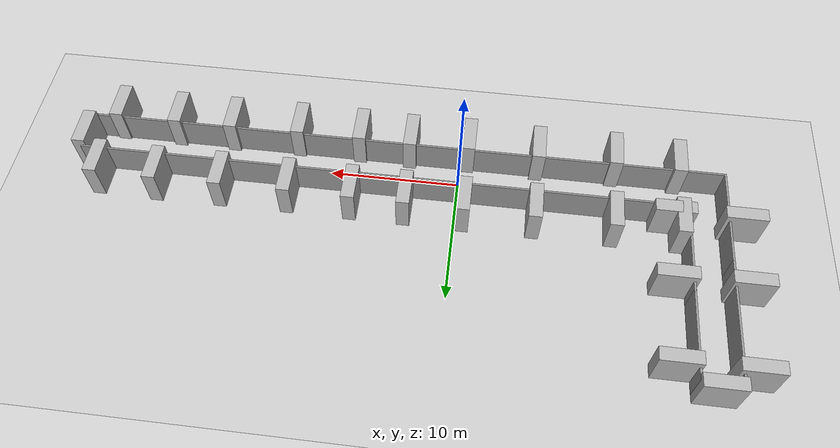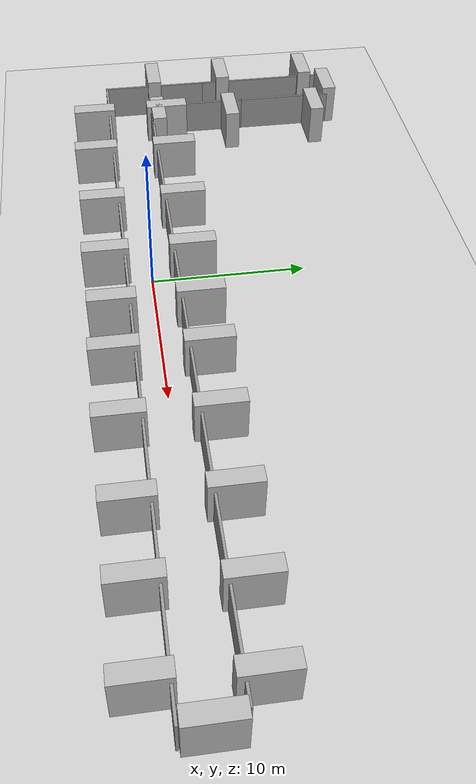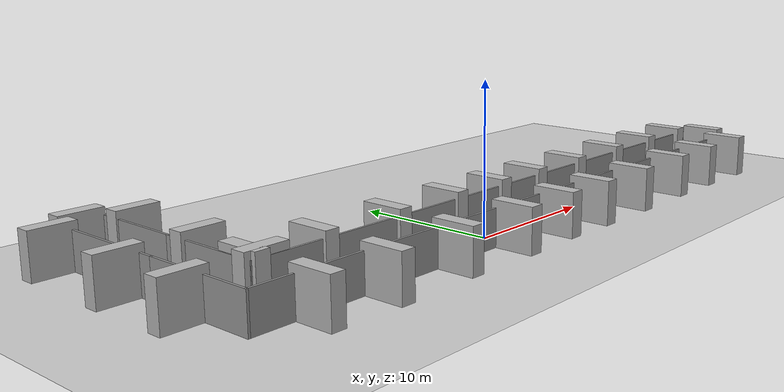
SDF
<sdf version="1.7">
 <world name="default">
  <light name="sun" type="directional">
   <pose>0 0 10 0 -0 0</pose>
   <diffuse>0.8 0.8 0.8 1</diffuse>
   <specular>0.2 0.2 0.2 1</specular>
   <attenuation>
    <range>1000</range>
    <constant>0.9</constant>
    <linear>0.01</linear>
    <quadratic>0.001</quadratic>
   </attenuation>
   <direction>-0.5 0.1 -0.9</direction>
   <spot><inner_angle>0</inner_angle><outer_angle>0</outer_angle><falloff>0</falloff></spot>
  </light>
  <model name="ground_plane">
   <static>1</static>
   <link name="link">
    <collision name="collision">
     <geometry><plane><normal>0 0 1</normal><size>100 100</size></plane></geometry>
     <surface>
      <contact><collide_bitmask>65535</collide_bitmask></contact>
      <friction><ode><mu>100</mu><mu2>50</mu2></ode></friction>
     </surface>
    </collision>
    <visual name="visual">
     <cast_shadows>0</cast_shadows>
     <geometry><plane><normal>0 0 1</normal><size>100 100</size></plane></geometry>
     <material>
      <script><uri>file://media/materials/scripts/gazebo.material</uri><name>Gazebo/Grey</name></script>
     </material>
    </visual>
   </link>
  </model>
  <gravity>0 0 -9.8</gravity>
  <magnetic_field>6e-06 2.3e-05 -4.2e-05</magnetic_field>
  <atmosphere type="adiabatic"/>
  <physics type="ode">
   <max_step_size>0.001</max_step_size>
   <real_time_factor>1</real_time_factor>
   <real_time_update_rate>1000</real_time_update_rate>
  </physics>
  <scene><ambient>0.4 0.4 0.4 1</ambient><background>0.7 0.7 0.7 1</background><shadows>1</shadows></scene>
  <audio><device>default</device></audio>
  <spherical_coordinates>
   <surface_model>EARTH_WGS84</surface_model>
   <latitude_deg>0</latitude_deg>
   <longitude_deg>0</longitude_deg>
   <elevation>0</elevation>
   <heading_deg>0</heading_deg>
  </spherical_coordinates>
  <model name="world2">
   <pose>4.7262 6.81622 0 0 -0 0</pose>
   <link name="Wall_12">
    <collision name="Wall_12_Collision">
     <geometry><box><size>7.75 0.15 2.5</size></box></geometry>
     <pose>0 0 1.25 0 -0 0</pose>
    </collision>
    <visual name="Wall_12_Visual">
     <pose>0 0 1.25 0 -0 0</pose>
     <geometry><box><size>7.75 0.15 2.5</size></box></geometry>
     <material>
      <script><uri>file://media/materials/scripts/gazebo.material</uri><name>Gazebo/Grey</name></script>
      <ambient>1 1 1 1</ambient>
     </material>
     <meta><layer>0</layer></meta>
    </visual>
    <pose>-24.6986 -4.675 0 0 -0 1.5708</pose>
   </link>
   <link name="Wall_14">
    <collision name="Wall_14_Collision">
     <geometry><box><size>11.25 0.15 2.5</size></box></geometry>
     <pose>0 0 1.25 0 -0 0</pose>
    </collision>
    <visual name="Wall_14_Visual">
     <pose>0 0 1.25 0 -0 0</pose>
     <geometry><box><size>11.25 0.15 2.5</size></box></geometry>
     <material>
      <script><uri>file://media/materials/scripts/gazebo.material</uri><name>Gazebo/Grey</name></script>
      <ambient>1 1 1 1</ambient>
     </material>
     <meta><layer>0</layer></meta>
    </visual>
    <pose>-16.3037 -5.29947 0 0 -0 3.14159</pose>
   </link>
   <link name="Wall_16">
    <collision name="Wall_16_Collision">
     <geometry><box><size>7.25 0.15 2.5</size></box></geometry>
     <pose>0 0 1.25 0 -0 0</pose>
    </collision>
    <visual name="Wall_16_Visual">
     <pose>0 0 1.25 0 -0 0</pose>
     <geometry><box><size>7.25 0.15 2.5</size></box></geometry>
     <material>
      <script><uri>file://media/materials/scripts/gazebo.material</uri><name>Gazebo/Grey</name></script>
      <ambient>1 1 1 1</ambient>
     </material>
     <meta><layer>0</layer></meta>
    </visual>
    <pose>-21.8537 -1.74947 0 0 -0 1.5708</pose>
   </link>
   <link name="Wall_18">
    <collision name="Wall_18_Collision">
     <geometry><box><size>9.5 0.15 2.5</size></box></geometry>
     <pose>0 0 1.25 0 -0 0</pose>
    </collision>
    <visual name="Wall_18_Visual">
     <pose>0 0 1.25 0 -0 0</pose>
     <geometry><box><size>9.5 0.15 2.5</size></box></geometry>
     <material>
      <script><uri>file://media/materials/scripts/gazebo.material</uri><name>Gazebo/Grey</name></script>
      <ambient>1 1 1 1</ambient>
     </material>
     <meta><layer>0</layer></meta>
    </visual>
    <pose>-24.6986 3.8 0 0 -0 1.5708</pose>
   </link>
   <link name="Wall_20">
    <collision name="Wall_20_Collision">
     <geometry><box><size>6.75 0.15 2.5</size></box></geometry>
     <pose>0 0 1.25 0 -0 0</pose>
    </collision>
    <visual name="Wall_20_Visual">
     <pose>0 0 1.25 0 -0 0</pose>
     <geometry><box><size>6.75 0.15 2.5</size></box></geometry>
     <material>
      <script><uri>file://media/materials/scripts/gazebo.material</uri><name>Gazebo/Grey</name></script>
      <ambient>1 1 1 1</ambient>
     </material>
     <meta><layer>0</layer></meta>
    </visual>
    <pose>-21.8537 5.10053 0 0 -0 1.5708</pose>
   </link>
   <link name="Wall_24">
    <collision name="Wall_24_Collision">
     <geometry><box><size>35.5 0.15 2.5</size></box></geometry>
     <pose>0 0 1.25 0 -0 0</pose>
    </collision>
    <visual name="Wall_24_Visual">
     <pose>0 0 1.25 0 -0 0</pose>
     <geometry><box><size>35.5 0.15 2.5</size></box></geometry>
     <material>
      <script><uri>file://media/materials/scripts/gazebo.material</uri><name>Gazebo/Grey</name></script>
      <ambient>1 1 1 1</ambient>
     </material>
     <meta><layer>0</layer></meta>
    </visual>
    <pose>7.02355 -8.475 0 0 -0 0</pose>
   </link>
   <link name="Wall_27">
    <collision name="Wall_27_Collision">
     <geometry><box><size>35.25 0.15 2.5</size></box></geometry>
     <pose>0 0 1.25 0 -0 0</pose>
    </collision>
    <visual name="Wall_27_Visual">
     <pose>0 0 1.25 0 -0 0</pose>
     <geometry><box><size>35.25 0.15 2.5</size></box></geometry>
     <material>
      <script><uri>file://media/materials/scripts/gazebo.material</uri><name>Gazebo/Grey</name></script>
      <ambient>1 1 1 1</ambient>
     </material>
     <meta><layer>0</layer></meta>
    </visual>
    <pose>6.79625 -5.29947 0 0 -0 0</pose>
   </link>
   <link name="Wall_9">
    <collision name="Wall_9_Collision">
     <geometry><box><size>14.1971 0.15 2.5</size></box></geometry>
     <pose>0 0 1.25 0 -0 0</pose>
    </collision>
    <visual name="Wall_9_Visual">
     <pose>0 0 1.25 0 -0 0</pose>
     <geometry><box><size>14.1971 0.15 2.5</size></box></geometry>
     <material>
      <script><uri>file://media/materials/scripts/gazebo.material</uri><name>Gazebo/Grey</name></script>
      <ambient>1 1 1 1</ambient>
     </material>
     <meta><layer>0</layer></meta>
    </visual>
    <pose>-17.675 -8.475 0 0 -0 3.14159</pose>
   </link>
   <static>1</static>
  </model>
  <model name="brick_box_3x1x3">
   <static>1</static>
   <link name="chassis">
    <pose>0 0 1.5 0 -0 0</pose>
    <collision name="collision"><geometry><box><size>3 1 3</size></box></geometry></collision>
    <visual name="visual">
     <geometry><mesh><uri>model://brick_box_3x1x3/meshes/simple_box.dae</uri><scale>3 1 3</scale></mesh></geometry>
     <material>
      <script>
       <uri>model://brick_box_3x1x3/materials/scripts</uri>
       <uri>model://brick_box_3x1x3/materials/textures</uri>
       <name>BrickBox/Diffuse</name>
      </script>
     </material>
    </visual>
   </link>
   <pose>-16.0533 2.00438 0 0 -0 0</pose>
  </model>
  <model name="brick_box_3x1x3_clone">
   <static>1</static>
   <link name="chassis">
    <pose>0 0 1.5 0 -0 0</pose>
    <collision name="collision"><geometry><box><size>3 1 3</size></box></geometry></collision>
    <visual name="visual">
     <geometry><mesh><uri>model://brick_box_3x1x3/meshes/simple_box.dae</uri><scale>3 1 3</scale></mesh></geometry>
     <material>
      <script>
       <uri>model://brick_box_3x1x3/materials/scripts</uri>
       <uri>model://brick_box_3x1x3/materials/textures</uri>
       <name>BrickBox/Diffuse</name>
      </script>
     </material>
    </visual>
   </link>
   <pose>-21.1247 2.05732 0 0 -0 0</pose>
  </model>
  <model name="brick_box_3x1x3_clone_0">
   <static>1</static>
   <link name="chassis">
    <pose>0 0 1.5 0 -0 0</pose>
    <collision name="collision"><geometry><box><size>3 1 3</size></box></geometry></collision>
    <visual name="visual">
     <geometry><mesh><uri>model://brick_box_3x1x3/meshes/simple_box.dae</uri><scale>3 1 3</scale></mesh></geometry>
     <material>
      <script>
       <uri>model://brick_box_3x1x3/materials/scripts</uri>
       <uri>model://brick_box_3x1x3/materials/textures</uri>
       <name>BrickBox/Diffuse</name>
      </script>
     </material>
    </visual>
   </link>
   <pose>-15.9462 7.47213 0 0 -0 0</pose>
  </model>
  <model name="brick_box_3x1x3_clone_1">
   <static>1</static>
   <link name="chassis">
    <pose>0 0 1.5 0 -0 0</pose>
    <collision name="collision"><geometry><box><size>3 1 3</size></box></geometry></collision>
    <visual name="visual">
     <geometry><mesh><uri>model://brick_box_3x1x3/meshes/simple_box.dae</uri><scale>3 1 3</scale></mesh></geometry>
     <material>
      <script>
       <uri>model://brick_box_3x1x3/materials/scripts</uri>
       <uri>model://brick_box_3x1x3/materials/textures</uri>
       <name>BrickBox/Diffuse</name>
      </script>
     </material>
    </visual>
   </link>
   <pose>-21.2009 7.4413 0 0 -0 0</pose>
  </model>
  <model name="brick_box_3x1x3_clone_2">
   <static>1</static>
   <link name="chassis">
    <pose>0 0 1.5 0 -0 0</pose>
    <collision name="collision"><geometry><box><size>3 1 3</size></box></geometry></collision>
    <visual name="visual">
     <geometry><mesh><uri>model://brick_box_3x1x3/meshes/simple_box.dae</uri><scale>3 1 3</scale></mesh></geometry>
     <material>
      <script>
       <uri>model://brick_box_3x1x3/materials/scripts</uri>
       <uri>model://brick_box_3x1x3/materials/textures</uri>
       <name>BrickBox/Diffuse</name>
      </script>
     </material>
    </visual>
   </link>
   <pose>-15.8198 13.9062 0 0 -0 0</pose>
  </model>
  <model name="brick_box_3x1x3_clone_3">
   <static>1</static>
   <link name="chassis">
    <pose>0 0 1.5 0 -0 0</pose>
    <collision name="collision"><geometry><box><size>3 1 3</size></box></geometry></collision>
    <visual name="visual">
     <geometry><mesh><uri>model://brick_box_3x1x3/meshes/simple_box.dae</uri><scale>3 1 3</scale></mesh></geometry>
     <material>
      <script>
       <uri>model://brick_box_3x1x3/materials/scripts</uri>
       <uri>model://brick_box_3x1x3/materials/textures</uri>
       <name>BrickBox/Diffuse</name>
      </script>
     </material>
    </visual>
   </link>
   <pose>-21.1444 13.9923 0 0 -0 0</pose>
  </model>
  <model name="brick_box_3x1x3_clone_4">
   <static>1</static>
   <link name="chassis">
    <pose>0 0 1.5 0 -0 0</pose>
    <collision name="collision"><geometry><box><size>3 1 3</size></box></geometry></collision>
    <visual name="visual">
     <geometry><mesh><uri>model://brick_box_3x1x3/meshes/simple_box.dae</uri><scale>3 1 3</scale></mesh></geometry>
     <material>
      <script>
       <uri>model://brick_box_3x1x3/materials/scripts</uri>
       <uri>model://brick_box_3x1x3/materials/textures</uri>
       <name>BrickBox/Diffuse</name>
      </script>
     </material>
    </visual>
   </link>
   <pose>-11.7529 2.71518 0 0 -0 1.5708</pose>
  </model>
  <model name="brick_box_3x1x3_clone_4_clone">
   <static>1</static>
   <link name="chassis">
    <pose>0 0 1.5 0 -0 0</pose>
    <collision name="collision"><geometry><box><size>3 1 3</size></box></geometry></collision>
    <visual name="visual">
     <geometry><mesh><uri>model://brick_box_3x1x3/meshes/simple_box.dae</uri><scale>3 1 3</scale></mesh></geometry>
     <material>
      <script>
       <uri>model://brick_box_3x1x3/materials/scripts</uri>
       <uri>model://brick_box_3x1x3/materials/textures</uri>
       <name>BrickBox/Diffuse</name>
      </script>
     </material>
    </visual>
   </link>
   <pose>-16.6245 2.66905 0 0 -0 1.5708</pose>
  </model>
  <model name="brick_box_3x1x3_clone_4_clone_0">
   <static>1</static>
   <link name="chassis">
    <pose>0 0 1.5 0 -0 0</pose>
    <collision name="collision"><geometry><box><size>3 1 3</size></box></geometry></collision>
    <visual name="visual">
     <geometry><mesh><uri>model://brick_box_3x1x3/meshes/simple_box.dae</uri><scale>3 1 3</scale></mesh></geometry>
     <material>
      <script>
       <uri>model://brick_box_3x1x3/materials/scripts</uri>
       <uri>model://brick_box_3x1x3/materials/textures</uri>
       <name>BrickBox/Diffuse</name>
      </script>
     </material>
    </visual>
   </link>
   <pose>-16.5797 -2.76767 0 0 -0 1.5708</pose>
  </model>
  <model name="brick_box_3x1x3_clone_4_clone_1">
   <static>1</static>
   <link name="chassis">
    <pose>0 0 1.5 0 -0 0</pose>
    <collision name="collision"><geometry><box><size>3 1 3</size></box></geometry></collision>
    <visual name="visual">
     <geometry><mesh><uri>model://brick_box_3x1x3/meshes/simple_box.dae</uri><scale>3 1 3</scale></mesh></geometry>
     <material>
      <script>
       <uri>model://brick_box_3x1x3/materials/scripts</uri>
       <uri>model://brick_box_3x1x3/materials/textures</uri>
       <name>BrickBox/Diffuse</name>
      </script>
     </material>
    </visual>
   </link>
   <pose>-11.7866 -2.89096 0 0 -0 1.5708</pose>
  </model>
  <model name="brick_box_3x1x3_clone_4_clone_2">
   <static>1</static>
   <link name="chassis">
    <pose>0 0 1.5 0 -0 0</pose>
    <collision name="collision"><geometry><box><size>3 1 3</size></box></geometry></collision>
    <visual name="visual">
     <geometry><mesh><uri>model://brick_box_3x1x3/meshes/simple_box.dae</uri><scale>3 1 3</scale></mesh></geometry>
     <material>
      <script>
       <uri>model://brick_box_3x1x3/materials/scripts</uri>
       <uri>model://brick_box_3x1x3/materials/textures</uri>
       <name>BrickBox/Diffuse</name>
      </script>
     </material>
    </visual>
   </link>
   <pose>-5.8984 2.68785 0 0 -0 1.5708</pose>
  </model>
  <model name="brick_box_3x1x3_clone_4_clone_3">
   <static>1</static>
   <link name="chassis">
    <pose>0 0 1.5 0 -0 0</pose>
    <collision name="collision"><geometry><box><size>3 1 3</size></box></geometry></collision>
    <visual name="visual">
     <geometry><mesh><uri>model://brick_box_3x1x3/meshes/simple_box.dae</uri><scale>3 1 3</scale></mesh></geometry>
     <material>
      <script>
       <uri>model://brick_box_3x1x3/materials/scripts</uri>
       <uri>model://brick_box_3x1x3/materials/textures</uri>
       <name>BrickBox/Diffuse</name>
      </script>
     </material>
    </visual>
   </link>
   <pose>-5.9325 -2.7777 0 0 -0 1.5708</pose>
  </model>
  <model name="brick_box_3x1x3_clone_4_clone_4">
   <static>1</static>
   <link name="chassis">
    <pose>0 0 1.5 0 -0 0</pose>
    <collision name="collision"><geometry><box><size>3 1 3</size></box></geometry></collision>
    <visual name="visual">
     <geometry><mesh><uri>model://brick_box_3x1x3/meshes/simple_box.dae</uri><scale>3 1 3</scale></mesh></geometry>
     <material>
      <script>
       <uri>model://brick_box_3x1x3/materials/scripts</uri>
       <uri>model://brick_box_3x1x3/materials/textures</uri>
       <name>BrickBox/Diffuse</name>
      </script>
     </material>
    </visual>
   </link>
   <pose>-0.607345 2.71275 0 0 -0 1.5708</pose>
  </model>
  <model name="brick_box_3x1x3_clone_4_clone_5">
   <static>1</static>
   <link name="chassis">
    <pose>0 0 1.5 0 -0 0</pose>
    <collision name="collision"><geometry><box><size>3 1 3</size></box></geometry></collision>
    <visual name="visual">
     <geometry><mesh><uri>model://brick_box_3x1x3/meshes/simple_box.dae</uri><scale>3 1 3</scale></mesh></geometry>
     <material>
      <script>
       <uri>model://brick_box_3x1x3/materials/scripts</uri>
       <uri>model://brick_box_3x1x3/materials/textures</uri>
       <name>BrickBox/Diffuse</name>
      </script>
     </material>
    </visual>
   </link>
   <pose>-0.559161 -2.89095 0 0 -0 1.5708</pose>
  </model>
  <model name="brick_box_3x1x3_clone_4_clone_6">
   <static>1</static>
   <link name="chassis">
    <pose>0 0 1.5 0 -0 0</pose>
    <collision name="collision"><geometry><box><size>3 1 3</size></box></geometry></collision>
    <visual name="visual">
     <geometry><mesh><uri>model://brick_box_3x1x3/meshes/simple_box.dae</uri><scale>3 1 3</scale></mesh></geometry>
     <material>
      <script>
       <uri>model://brick_box_3x1x3/materials/scripts</uri>
       <uri>model://brick_box_3x1x3/materials/textures</uri>
       <name>BrickBox/Diffuse</name>
      </script>
     </material>
    </visual>
   </link>
   <pose>3.83276 2.66611 0 0 -0 1.5708</pose>
  </model>
  <model name="brick_box_3x1x3_clone_4_clone_7">
   <static>1</static>
   <link name="chassis">
    <pose>0 0 1.5 0 -0 0</pose>
    <collision name="collision"><geometry><box><size>3 1 3</size></box></geometry></collision>
    <visual name="visual">
     <geometry><mesh><uri>model://brick_box_3x1x3/meshes/simple_box.dae</uri><scale>3 1 3</scale></mesh></geometry>
     <material>
      <script>
       <uri>model://brick_box_3x1x3/materials/scripts</uri>
       <uri>model://brick_box_3x1x3/materials/textures</uri>
       <name>BrickBox/Diffuse</name>
      </script>
     </material>
    </visual>
   </link>
   <pose>3.95162 -2.76277 0 0 -0 1.5708</pose>
  </model>
  <model name="brick_box_3x1x3_clone_4_clone_8">
   <static>1</static>
   <link name="chassis">
    <pose>0 0 1.5 0 -0 0</pose>
    <collision name="collision"><geometry><box><size>3 1 3</size></box></geometry></collision>
    <visual name="visual">
     <geometry><mesh><uri>model://brick_box_3x1x3/meshes/simple_box.dae</uri><scale>3 1 3</scale></mesh></geometry>
     <material>
      <script>
       <uri>model://brick_box_3x1x3/materials/scripts</uri>
       <uri>model://brick_box_3x1x3/materials/textures</uri>
       <name>BrickBox/Diffuse</name>
      </script>
     </material>
    </visual>
   </link>
   <pose>7.93508 2.65556 0 0 -0 1.5708</pose>
  </model>
  <model name="brick_box_3x1x3_clone_4_clone_9">
   <static>1</static>
   <link name="chassis">
    <pose>0 0 1.5 0 -0 0</pose>
    <collision name="collision"><geometry><box><size>3 1 3</size></box></geometry></collision>
    <visual name="visual">
     <geometry><mesh><uri>model://brick_box_3x1x3/meshes/simple_box.dae</uri><scale>3 1 3</scale></mesh></geometry>
     <material>
      <script>
       <uri>model://brick_box_3x1x3/materials/scripts</uri>
       <uri>model://brick_box_3x1x3/materials/textures</uri>
       <name>BrickBox/Diffuse</name>
      </script>
     </material>
    </visual>
   </link>
   <pose>7.90736 -2.87471 0 0 -0 1.5708</pose>
  </model>
  <model name="brick_box_3x1x3_clone_4_clone_10">
   <static>1</static>
   <link name="chassis">
    <pose>0 0 1.5 0 -0 0</pose>
    <collision name="collision"><geometry><box><size>3 1 3</size></box></geometry></collision>
    <visual name="visual">
     <geometry><mesh><uri>model://brick_box_3x1x3/meshes/simple_box.dae</uri><scale>3 1 3</scale></mesh></geometry>
     <material>
      <script>
       <uri>model://brick_box_3x1x3/materials/scripts</uri>
       <uri>model://brick_box_3x1x3/materials/textures</uri>
       <name>BrickBox/Diffuse</name>
      </script>
     </material>
    </visual>
   </link>
   <pose>12.7788 2.60562 0 0 -0 1.5708</pose>
  </model>
  <model name="brick_box_3x1x3_clone_4_clone_11">
   <static>1</static>
   <link name="chassis">
    <pose>0 0 1.5 0 -0 0</pose>
    <collision name="collision"><geometry><box><size>3 1 3</size></box></geometry></collision>
    <visual name="visual">
     <geometry><mesh><uri>model://brick_box_3x1x3/meshes/simple_box.dae</uri><scale>3 1 3</scale></mesh></geometry>
     <material>
      <script>
       <uri>model://brick_box_3x1x3/materials/scripts</uri>
       <uri>model://brick_box_3x1x3/materials/textures</uri>
       <name>BrickBox/Diffuse</name>
      </script>
     </material>
    </visual>
   </link>
   <pose>12.7674 -2.91127 0 0 -0 1.5708</pose>
  </model>
  <model name="brick_box_3x1x3_clone_4_clone_12">
   <static>1</static>
   <link name="chassis">
    <pose>0 0 1.5 0 -0 0</pose>
    <collision name="collision"><geometry><box><size>3 1 3</size></box></geometry></collision>
    <visual name="visual">
     <geometry><mesh><uri>model://brick_box_3x1x3/meshes/simple_box.dae</uri><scale>3 1 3</scale></mesh></geometry>
     <material>
      <script>
       <uri>model://brick_box_3x1x3/materials/scripts</uri>
       <uri>model://brick_box_3x1x3/materials/textures</uri>
       <name>BrickBox/Diffuse</name>
      </script>
     </material>
    </visual>
   </link>
   <pose>17.9711 2.6226 0 0 -0 1.5708</pose>
  </model>
  <model name="brick_box_3x1x3_clone_4_clone_13">
   <static>1</static>
   <link name="chassis">
    <pose>0 0 1.5 0 -0 0</pose>
    <collision name="collision"><geometry><box><size>3 1 3</size></box></geometry></collision>
    <visual name="visual">
     <geometry><mesh><uri>model://brick_box_3x1x3/meshes/simple_box.dae</uri><scale>3 1 3</scale></mesh></geometry>
     <material>
      <script>
       <uri>model://brick_box_3x1x3/materials/scripts</uri>
       <uri>model://brick_box_3x1x3/materials/textures</uri>
       <name>BrickBox/Diffuse</name>
      </script>
     </material>
    </visual>
   </link>
   <pose>18.079 -2.83658 0 0 -0 1.5708</pose>
  </model>
  <model name="brick_box_3x1x3_clone_4_clone_14">
   <static>1</static>
   <link name="chassis">
    <pose>0 0 1.5 0 -0 0</pose>
    <collision name="collision"><geometry><box><size>3 1 3</size></box></geometry></collision>
    <visual name="visual">
     <geometry><mesh><uri>model://brick_box_3x1x3/meshes/simple_box.dae</uri><scale>3 1 3</scale></mesh></geometry>
     <material>
      <script>
       <uri>model://brick_box_3x1x3/materials/scripts</uri>
       <uri>model://brick_box_3x1x3/materials/textures</uri>
       <name>BrickBox/Diffuse</name>
      </script>
     </material>
    </visual>
   </link>
   <pose>22.9601 2.67995 0 0 -0 1.5708</pose>
  </model>
  <model name="brick_box_3x1x3_clone_4_clone_15">
   <static>1</static>
   <link name="chassis">
    <pose>0 0 1.5 0 -0 0</pose>
    <collision name="collision"><geometry><box><size>3 1 3</size></box></geometry></collision>
    <visual name="visual">
     <geometry><mesh><uri>model://brick_box_3x1x3/meshes/simple_box.dae</uri><scale>3 1 3</scale></mesh></geometry>
     <material>
      <script>
       <uri>model://brick_box_3x1x3/materials/scripts</uri>
       <uri>model://brick_box_3x1x3/materials/textures</uri>
       <name>BrickBox/Diffuse</name>
      </script>
     </material>
    </visual>
   </link>
   <pose>22.5016 -2.83819 0 0 -0 1.5708</pose>
  </model>
  <model name="brick_box_3x1x3_clone_4_clone_16">
   <static>1</static>
   <link name="chassis">
    <pose>0 0 1.5 0 -0 0</pose>
    <collision name="collision"><geometry><box><size>3 1 3</size></box></geometry></collision>
    <visual name="visual">
     <geometry><mesh><uri>model://brick_box_3x1x3/meshes/simple_box.dae</uri><scale>3 1 3</scale></mesh></geometry>
     <material>
      <script>
       <uri>model://brick_box_3x1x3/materials/scripts</uri>
       <uri>model://brick_box_3x1x3/materials/textures</uri>
       <name>BrickBox/Diffuse</name>
      </script>
     </material>
    </visual>
   </link>
   <pose>27.1979 -2.93586 0 0 -0 1.5708</pose>
  </model>
  <model name="brick_box_3x1x3_clone_4_clone_17">
   <static>1</static>
   <link name="chassis">
    <pose>0 0 1.5 0 -0 0</pose>
    <collision name="collision"><geometry><box><size>3 1 3</size></box></geometry></collision>
    <visual name="visual">
     <geometry><mesh><uri>model://brick_box_3x1x3/meshes/simple_box.dae</uri><scale>3 1 3</scale></mesh></geometry>
     <material>
      <script>
       <uri>model://brick_box_3x1x3/materials/scripts</uri>
       <uri>model://brick_box_3x1x3/materials/textures</uri>
       <name>BrickBox/Diffuse</name>
      </script>
     </material>
    </visual>
   </link>
   <pose>27.5349 2.57733 0 0 -0 1.5708</pose>
  </model>
  <model name="brick_box_3x1x3_clone_3_clone">
   <static>1</static>
   <link name="chassis">
    <pose>0 0 1.5 0 -0 0</pose>
    <collision name="collision"><geometry><box><size>3 1 3</size></box></geometry></collision>
    <visual name="visual">
     <geometry><mesh><uri>model://brick_box_3x1x3/meshes/simple_box.dae</uri><scale>3 1 3</scale></mesh></geometry>
     <material>
      <script>
       <uri>model://brick_box_3x1x3/materials/scripts</uri>
       <uri>model://brick_box_3x1x3/materials/textures</uri>
       <name>BrickBox/Diffuse</name>
      </script>
     </material>
    </visual>
   </link>
   <pose>-18.5717 15.4136 0 0 -0 0</pose>
  </model>
  <model name="brick_box_3x1x3_clone_4_clone_17_clone">
   <static>1</static>
   <link name="chassis">
    <pose>0 0 1.5 0 -0 0</pose>
    <collision name="collision"><geometry><box><size>3 1 3</size></box></geometry></collision>
    <visual name="visual">
     <geometry><mesh><uri>model://brick_box_3x1x3/meshes/simple_box.dae</uri><scale>3 1 3</scale></mesh></geometry>
     <material>
      <script>
       <uri>model://brick_box_3x1x3/materials/scripts</uri>
       <uri>model://brick_box_3x1x3/materials/textures</uri>
       <name>BrickBox/Diffuse</name>
      </script>
     </material>
    </visual>
   </link>
   <pose>29.2881 -0.051001 0 0 -0 1.5708</pose>
  </model>
 </world>
</sdf>
